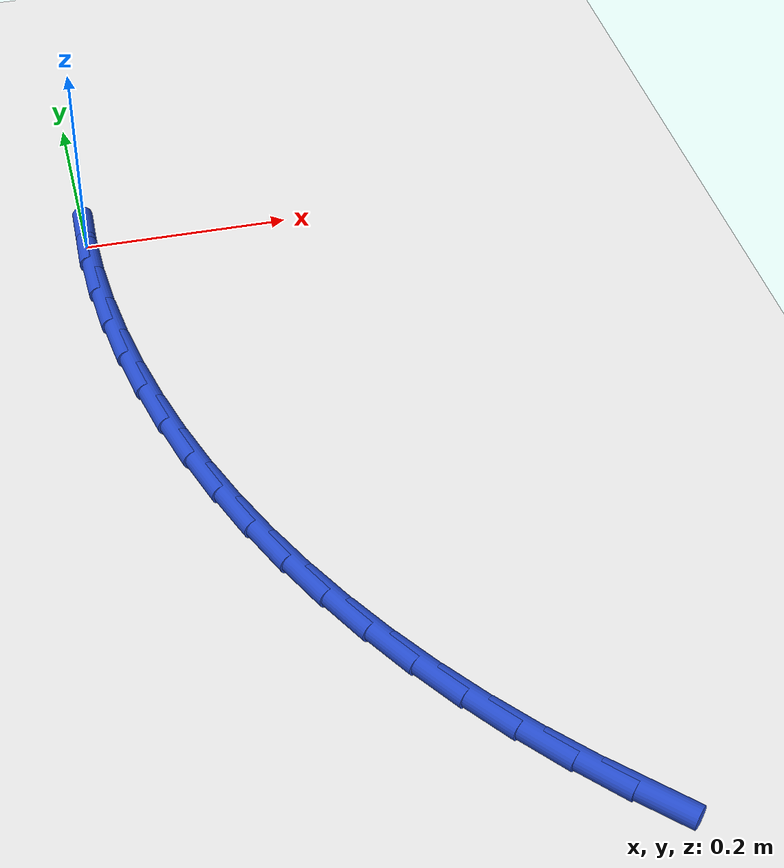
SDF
<sdf version="1.6">
 <world name="default">
  <model name="ground_plane">
   <static>1</static>
   <link name="link">
    <collision name="collision">
     <geometry><plane><normal>0 0 1</normal><size>100 100</size></plane></geometry>
     <surface><friction><ode><mu>100</mu><mu2>50</mu2></ode></friction></surface>
    </collision>
    <visual name="visual">
     <cast_shadows>0</cast_shadows>
     <geometry><plane><normal>0 0 1</normal><size>100 100</size></plane></geometry>
     <material>
      <script><uri>file://media/materials/scripts/gazebo.material</uri><name>Gazebo/WhiteGlow</name></script>
     </material>
    </visual>
   </link>
  </model>
  <model name="line">
   <link name="link_0">
    <pose>-2.0816681711721685e-17 1.249000902703301e-16 0.01 0 1.57 1.5409839974002413</pose>
    <collision name="collision">
     <geometry><cylinder><radius>0.01</radius><length>0.08</length></cylinder></geometry>
    </collision>
    <visual name="visual">
     <material>
      <script><name>Gazebo/Blue</name><uri>file://media/materials/scripts/gazebo.material</uri></script>
     </material>
     <geometry><cylinder><radius>0.01</radius><length>0.08</length></cylinder></geometry>
    </visual>
   </link>
   <link name="link_133">
    <pose>0.31897321093370984 -0.732206816181152 0.01 0 1.57 -0.774887396731351</pose>
    <collision name="collision">
     <geometry><cylinder><radius>0.01</radius><length>0.08</length></cylinder></geometry>
    </collision>
    <visual name="visual">
     <material>
      <script><name>Gazebo/Blue</name><uri>file://media/materials/scripts/gazebo.material</uri></script>
     </material>
     <geometry><cylinder><radius>0.01</radius><length>0.08</length></cylinder></geometry>
    </visual>
   </link>
   <link name="link_134">
    <pose>0.2842241598151487 -0.6981806717172995 0.01 0 1.57 -0.8223202776253725</pose>
    <collision name="collision">
     <geometry><cylinder><radius>0.01</radius><length>0.08</length></cylinder></geometry>
    </collision>
    <visual name="visual">
     <material>
      <script><name>Gazebo/Blue</name><uri>file://media/materials/scripts/gazebo.material</uri></script>
     </material>
     <geometry><cylinder><radius>0.01</radius><length>0.08</length></cylinder></geometry>
    </visual>
   </link>
   <link name="link_135">
    <pose>0.25124438879657346 -0.6626709750093295 0.01 0 1.57 -0.8700067592686892</pose>
    <collision name="collision">
     <geometry><cylinder><radius>0.01</radius><length>0.08</length></cylinder></geometry>
    </collision>
    <visual name="visual">
     <material>
      <script><name>Gazebo/Blue</name><uri>file://media/materials/scripts/gazebo.material</uri></script>
     </material>
     <geometry><cylinder><radius>0.01</radius><length>0.08</length></cylinder></geometry>
    </visual>
   </link>
   <link name="link_136">
    <pose>0.2200806366531282 -0.6257312982512018 0.01 0 1.57 -0.9179421334537181</pose>
    <collision name="collision">
     <geometry><cylinder><radius>0.01</radius><length>0.08</length></cylinder></geometry>
    </collision>
    <visual name="visual">
     <material>
      <script><name>Gazebo/Blue</name><uri>file://media/materials/scripts/gazebo.material</uri></script>
     </material>
     <geometry><cylinder><radius>0.01</radius><length>0.08</length></cylinder></geometry>
    </visual>
   </link>
   <link name="link_137">
    <pose>0.19077964215995868 -0.587415213636878 0.01 0 1.57 -0.9661190587019611</pose>
    <collision name="collision">
     <geometry><cylinder><radius>0.01</radius><length>0.08</length></cylinder></geometry>
    </collision>
    <visual name="visual">
     <material>
      <script><name>Gazebo/Blue</name><uri>file://media/materials/scripts/gazebo.material</uri></script>
     </material>
     <geometry><cylinder><radius>0.01</radius><length>0.08</length></cylinder></geometry>
    </visual>
   </link>
   <link name="link_138">
    <pose>0.16338814409221067 -0.5477762933603199 0.01 0 1.57 -1.0145269333629146</pose>
    <collision name="collision">
     <geometry><cylinder><radius>0.01</radius><length>0.08</length></cylinder></geometry>
    </collision>
    <visual name="visual">
     <material>
      <script><name>Gazebo/Blue</name><uri>file://media/materials/scripts/gazebo.material</uri></script>
     </material>
     <geometry><cylinder><radius>0.01</radius><length>0.08</length></cylinder></geometry>
    </visual>
   </link>
   <link name="link_139">
    <pose>0.1379528812250284 -0.506868109615487 0.01 0 1.57 -1.0631513024704635</pose>
    <collision name="collision">
     <geometry><cylinder><radius>0.01</radius><length>0.08</length></cylinder></geometry>
    </collision>
    <visual name="visual">
     <material>
      <script><name>Gazebo/Blue</name><uri>file://media/materials/scripts/gazebo.material</uri></script>
     </material>
     <geometry><cylinder><radius>0.01</radius><length>0.08</length></cylinder></geometry>
    </visual>
   </link>
   <link name="link_140">
    <pose>0.114520592333558 -0.46474423459634195 0.01 0 1.57 -1.111973319516819</pose>
    <collision name="collision">
     <geometry><cylinder><radius>0.01</radius><length>0.08</length></cylinder></geometry>
    </collision>
    <visual name="visual">
     <material>
      <script><name>Gazebo/Blue</name><uri>file://media/materials/scripts/gazebo.material</uri></script>
     </material>
     <geometry><cylinder><radius>0.01</radius><length>0.08</length></cylinder></geometry>
    </visual>
   </link>
   <link name="link_141">
    <pose>0.0931380161929438 -0.4214582404968442 0.01 0 1.57 -1.1609205713948447</pose>
    <collision name="collision">
     <geometry><cylinder><radius>0.01</radius><length>0.08</length></cylinder></geometry>
    </collision>
    <visual name="visual">
     <material>
      <script><name>Gazebo/Blue</name><uri>file://media/materials/scripts/gazebo.material</uri></script>
     </material>
     <geometry><cylinder><radius>0.01</radius><length>0.08</length></cylinder></geometry>
    </visual>
   </link>
   <link name="link_142">
    <pose>0.07385159974937759 -0.3770689448195567 0.01 0 1.57 -1.2094679599167726</pose>
    <collision name="collision">
     <geometry><cylinder><radius>0.01</radius><length>0.08</length></cylinder></geometry>
    </collision>
    <visual name="visual">
     <material>
      <script><name>Gazebo/Blue</name><uri>file://media/materials/scripts/gazebo.material</uri></script>
     </material>
     <geometry><cylinder><radius>0.01</radius><length>0.08</length></cylinder></geometry>
    </visual>
   </link>
   <link name="link_143">
    <pose>0.05670438517265188 -0.3316963622261644 0.01 0 1.57 -1.2574773437571802</pose>
    <collision name="collision">
     <geometry><cylinder><radius>0.01</radius><length>0.08</length></cylinder></geometry>
    </collision>
    <visual name="visual">
     <material>
      <script><name>Gazebo/Blue</name><uri>file://media/materials/scripts/gazebo.material</uri></script>
     </material>
     <geometry><cylinder><radius>0.01</radius><length>0.08</length></cylinder></geometry>
    </visual>
   </link>
   <link name="link_144">
    <pose>0.041737212164757564 -0.28550009434579604 0.01 0 1.57 -1.305211512980358</pose>
    <collision name="collision">
     <geometry><cylinder><radius>0.01</radius><length>0.08</length></cylinder></geometry>
    </collision>
    <visual name="visual">
     <material>
      <script><name>Gazebo/Blue</name><uri>file://media/materials/scripts/gazebo.material</uri></script>
     </material>
     <geometry><cylinder><radius>0.01</radius><length>0.08</length></cylinder></geometry>
    </visual>
   </link>
   <link name="link_145">
    <pose>0.028990883456715535 -0.23864040732064762 0.01 0 1.57 -1.3529402532206876</pose>
    <collision name="collision">
     <geometry><cylinder><radius>0.01</radius><length>0.08</length></cylinder></geometry>
    </collision>
    <visual name="visual">
     <material>
      <script><name>Gazebo/Blue</name><uri>file://media/materials/scripts/gazebo.material</uri></script>
     </material>
     <geometry><cylinder><radius>0.01</radius><length>0.08</length></cylinder></geometry>
    </visual>
   </link>
   <link name="link_146">
    <pose>0.018506201779545782 -0.19127756729291223 0.01 0 1.57 -1.4009344152762793</pose>
    <collision name="collision">
     <geometry><cylinder><radius>0.01</radius><length>0.08</length></cylinder></geometry>
    </collision>
    <visual name="visual">
     <material>
      <script><name>Gazebo/Blue</name><uri>file://media/materials/scripts/gazebo.material</uri></script>
     </material>
     <geometry><cylinder><radius>0.01</radius><length>0.08</length></cylinder></geometry>
    </visual>
   </link>
   <link name="link_147">
    <pose>0.010323969864268945 -0.1435718404047851 0.01 0 1.57 -1.4494661978188508</pose>
    <collision name="collision">
     <geometry><cylinder><radius>0.01</radius><length>0.08</length></cylinder></geometry>
    </collision>
    <visual name="visual">
     <material>
      <script><name>Gazebo/Blue</name><uri>file://media/materials/scripts/gazebo.material</uri></script>
     </material>
     <geometry><cylinder><radius>0.01</radius><length>0.08</length></cylinder></geometry>
    </visual>
   </link>
   <link name="link_148">
    <pose>0.0044849904419055064 -0.09568349279846146 0.01 0 1.57 -1.4988091923367057</pose>
    <collision name="collision">
     <geometry><cylinder><radius>0.01</radius><length>0.08</length></cylinder></geometry>
    </collision>
    <visual name="visual">
     <material>
      <script><name>Gazebo/Blue</name><uri>file://media/materials/scripts/gazebo.material</uri></script>
     </material>
     <geometry><cylinder><radius>0.01</radius><length>0.08</length></cylinder></geometry>
    </visual>
   </link>
   <link name="link_149">
    <pose>0.001030066243475675 -0.047772790616134375 0.01 0 1.57 -1.5492378905958242</pose>
    <collision name="collision">
     <geometry><cylinder><radius>0.01</radius><length>0.08</length></cylinder></geometry>
    </collision>
    <visual name="visual">
     <material>
      <script><name>Gazebo/Blue</name><uri>file://media/materials/scripts/gazebo.material</uri></script>
     </material>
     <geometry><cylinder><radius>0.01</radius><length>0.08</length></cylinder></geometry>
    </visual>
   </link>
   <link name="link_150">
    <pose>-1.9081958235744878e-17 6.938893903907228e-17 0.01 0 1.57 1.5405663360516482</pose>
    <collision name="collision">
     <geometry><cylinder><radius>0.01</radius><length>0.08</length></cylinder></geometry>
    </collision>
    <visual name="visual">
     <material>
      <script><name>Gazebo/Blue</name><uri>file://media/materials/scripts/gazebo.material</uri></script>
     </material>
     <geometry><cylinder><radius>0.01</radius><length>0.08</length></cylinder></geometry>
    </visual>
   </link>
  </model>
 </world>
</sdf>
